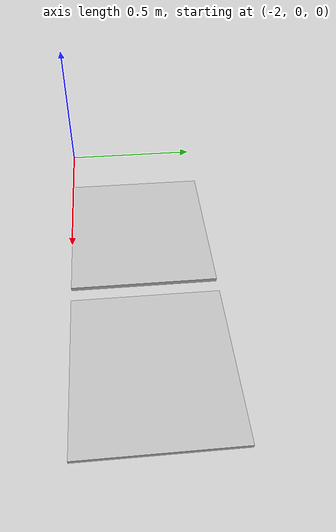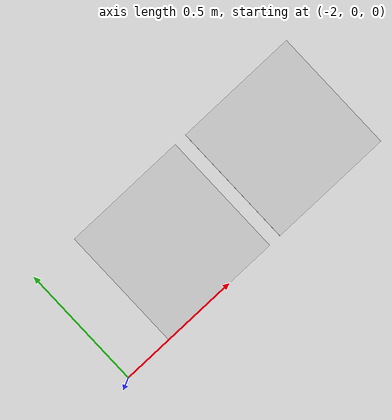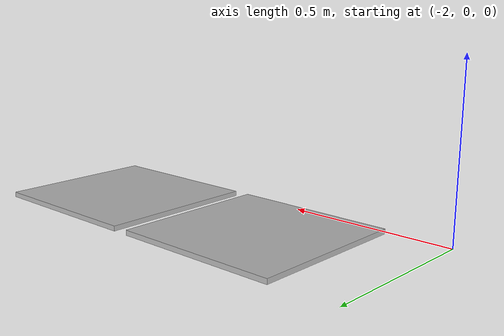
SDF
<?xml version='1.0'?>
<sdf version='1.5'>

  <model name='path1'>
    <pose>0 0 0 0 0 0</pose>

    <link name='square_1'>
      <inertial>
        <pose>-1.55 0.25 0.001 0 0 0</pose>
        <mass>0.001</mass>
        <inertia>
          <ixx>0.0000000046</ixx>
          <ixy>0</ixy>
          <ixz>0</ixz>
          <iyy>0.0000000046</iyy>
          <iyz>0</iyz>
          <izz>0.0000052</izz>
        </inertia>
      </inertial>

      <visual name='base_link_visual'>
        <pose>-1.55  0.25 0.001 0 0 0</pose>
        <geometry>
          <box>
            <size>0.5 0.5 0.015</size>
          </box>
        </geometry>
      </visual>

      <collision name='base_link_collision'>
        <pose>-1.55  0.25 0.001 0 0 0</pose>
        <geometry>
          <box>
            <size>0.5 0.5 0.015</size>
          </box>
        </geometry>
      </collision>

      <plugin name="freebuoyancy_gazebo" filename="libfreebuoyancy_gazebo.so">
        <descriptionParam>robot_description</descriptionParam>
        <fluidTopic>current</fluidTopic>
        <alwaysOn>true</alwaysOn>
        <surface>0 0 0</surface>
        <updateRate>.001</updateRate>
        <buoyancy>
          <compensation>0.01</compensation>
          <origin xyz="0 0 0"/>
        </buoyancy>
      </plugin>
    </link>

    <link name='square_2'>
      <inertial>
        <pose>-1 0.25 0.001 0 0 0</pose>
        <mass>0.001</mass>
        <inertia>
          <ixx>0.0000000046</ixx>
          <ixy>0</ixy>
          <ixz>0</ixz>
          <iyy>0.0000000046</iyy>
          <iyz>0</iyz>
          <izz>0.0000052</izz>
        </inertia>
      </inertial>

      <visual name='base_link_visual'>
        <pose>-1  0.25 0.001 0 0 0</pose>
        <geometry>
          <box>
            <size>0.5 0.5 0.015</size>
          </box>
        </geometry>
      </visual>

      <collision name='base_link_collision'>
        <pose>-1  0.25 0.001 0 0 0</pose>
        <geometry>
          <box>
            <size>0.5 0.5 0.015</size>
          </box>
        </geometry>
      </collision>

    </link>

  </model>

</sdf>
